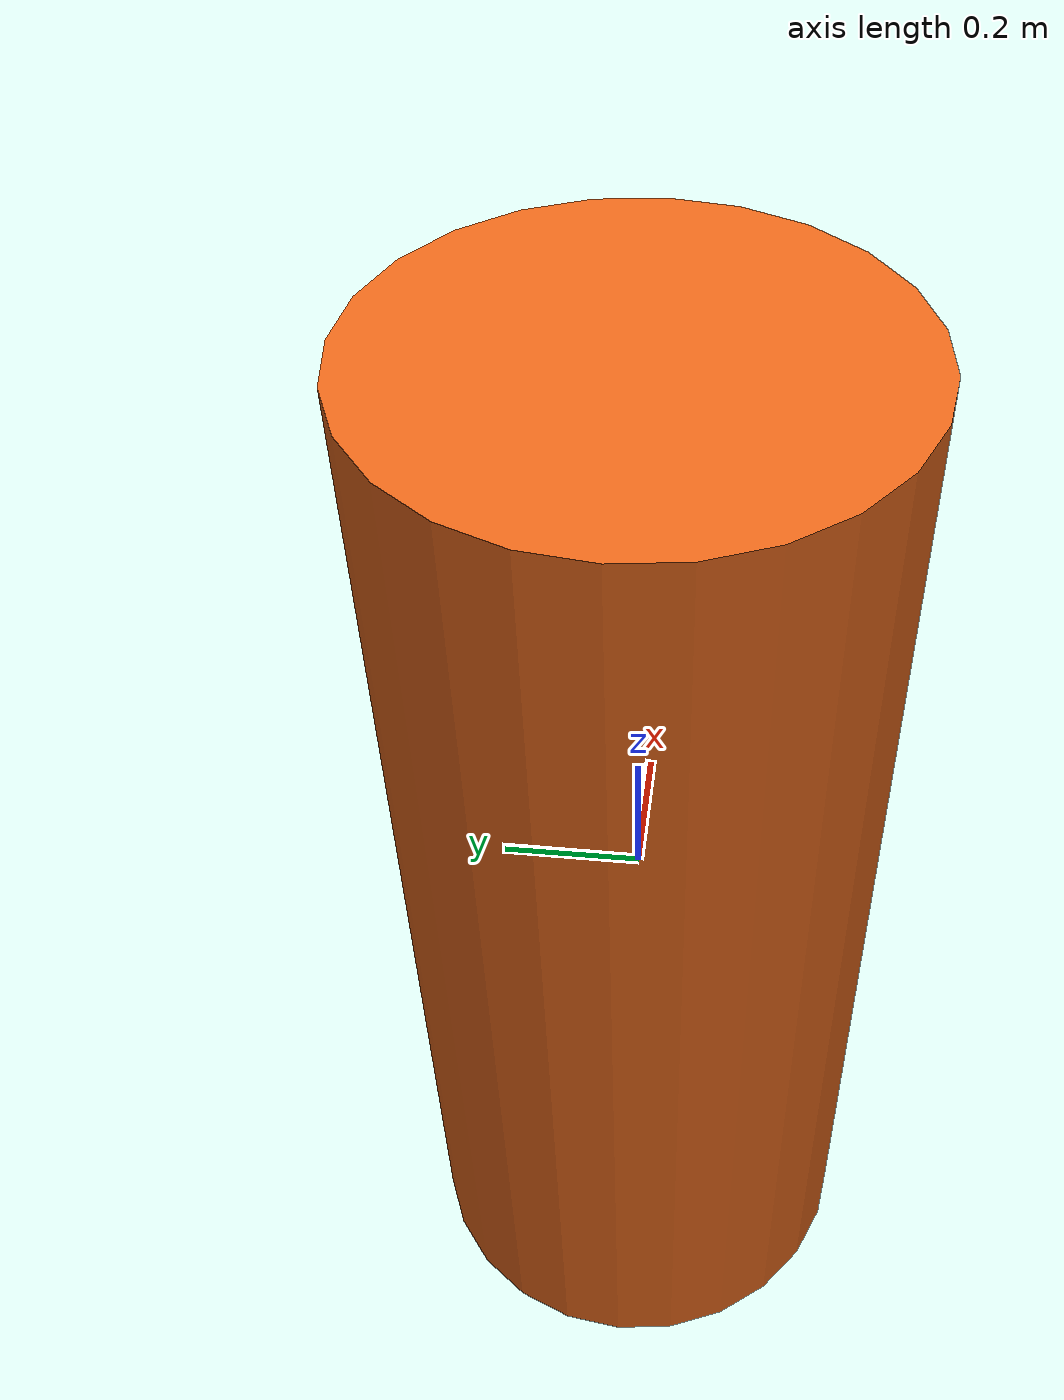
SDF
<?xml version="1.0" ?>
<sdf version="1.8">
  <model name="dynamic_pedestrian">
    <static>false</static>
    <link name="ped_link">
      <inertial>
        <mass>75.0</mass>
        <inertia>
          <ixx>18.0</ixx><ixy>0</ixy><ixz>0</ixz>
          <iyy>18.0</iyy><iyz>0</iyz>
          <izz>3.5</izz>
        </inertia>
      </inertial>
      <collision name="collision">
        <geometry>
          <cylinder>
            <radius>0.35</radius>
            <length>1.7</length>
          </cylinder>
        </geometry>
      </collision>
      <visual name="visual">
        <geometry>
          <cylinder>
            <radius>0.35</radius>
            <length>1.7</length>
          </cylinder>
        </geometry>
        <material>
          <ambient>0.9 0.4 0.1 1</ambient>
          <diffuse>0.9 0.4 0.1 1</diffuse>
        </material>
      </visual>
    </link>
  </model>
</sdf>
